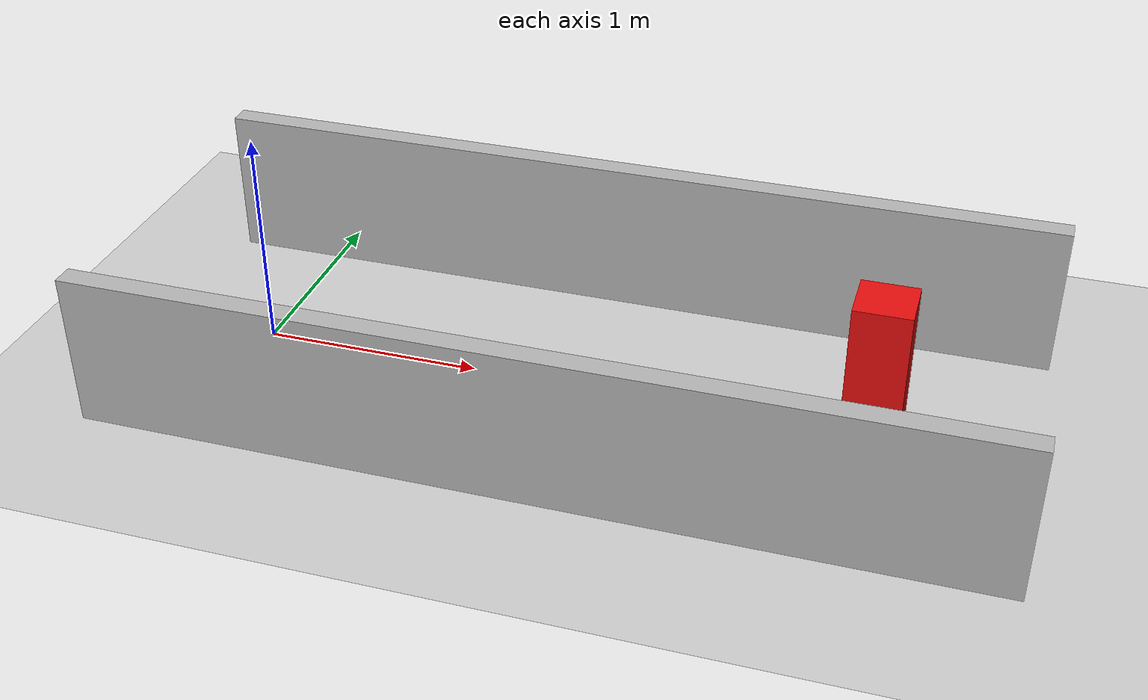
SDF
<?xml version="1.0"?>
<sdf version="1.6">
  <world name="default">
    <scene>
      <shadows>false</shadows>
    </scene>
    <include>
      <uri>model://ground_plane</uri>
    </include>
    <include>
      <uri>model://sun</uri>
    </include>
    <plugin name="gazebo_ros_state" filename="libgazebo_ros_state.so">
      <update_rate>20</update_rate>
    </plugin>
    <model name="left_wall">
      <static>true</static>
      <pose>1.5 0.8 0.35 0 0 0</pose>
      <link name="body">
        <visual name="box">
          <geometry>
            <box>
              <size>4.0 0.1 0.7</size>
            </box>
          </geometry>
          <material>
            <ambient>0.7 0.7 0.7 1</ambient>
            <diffuse>0.7 0.7 0.7 1</diffuse>
          </material>
        </visual>
        <collision name="box">
          <geometry>
            <box>
              <size>4.0 0.1 0.7</size>
            </box>
          </geometry>
        </collision>
      </link>
    </model>
    <model name="right_wall">
      <static>true</static>
      <pose>1.5 -0.8 0.35 0 0 0</pose>
      <link name="body">
        <visual name="box">
          <geometry>
            <box>
              <size>4.0 0.1 0.7</size>
            </box>
          </geometry>
          <material>
            <ambient>0.7 0.7 0.7 1</ambient>
            <diffuse>0.7 0.7 0.7 1</diffuse>
          </material>
        </visual>
        <collision name="box">
          <geometry>
            <box>
              <size>4.0 0.1 0.7</size>
            </box>
          </geometry>
        </collision>
      </link>
    </model>
    <model name="red_marker">
      <static>true</static>
      <pose>2.8 0.0 0.35 0 0 0</pose>
      <link name="body">
        <visual name="box">
          <geometry>
            <box>
              <size>0.25 0.25 0.7</size>
            </box>
          </geometry>
          <material>
            <ambient>0.9 0.05 0.05 1</ambient>
            <diffuse>0.9 0.05 0.05 1</diffuse>
          </material>
        </visual>
        <collision name="box">
          <geometry>
            <box>
              <size>0.25 0.25 0.7</size>
            </box>
          </geometry>
        </collision>
      </link>
    </model>
  </world>
</sdf>
